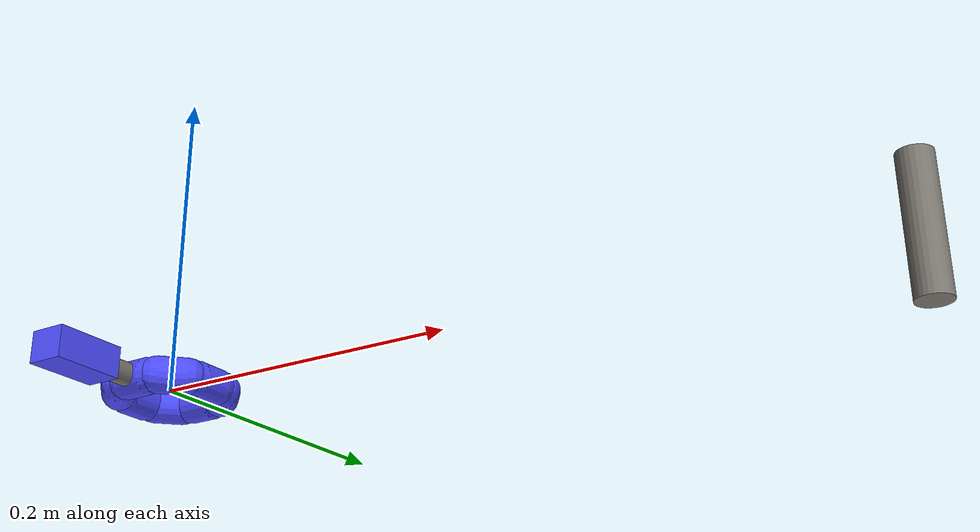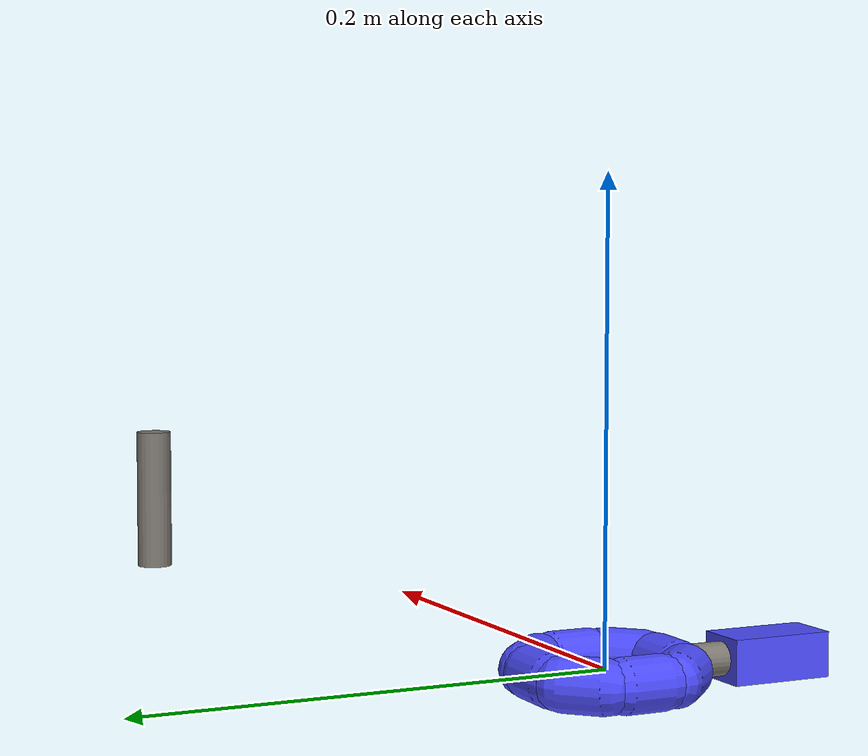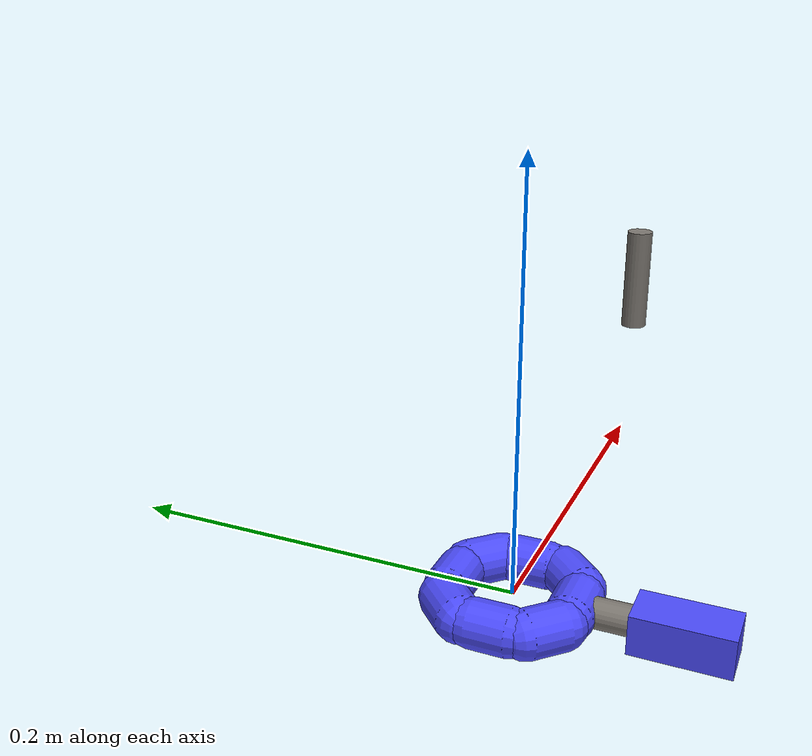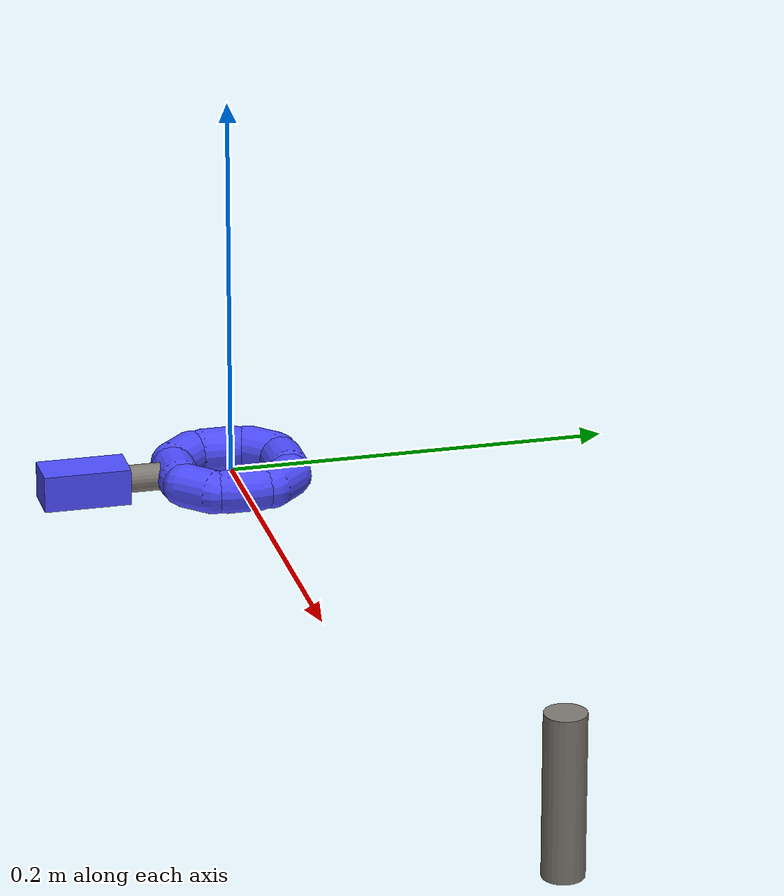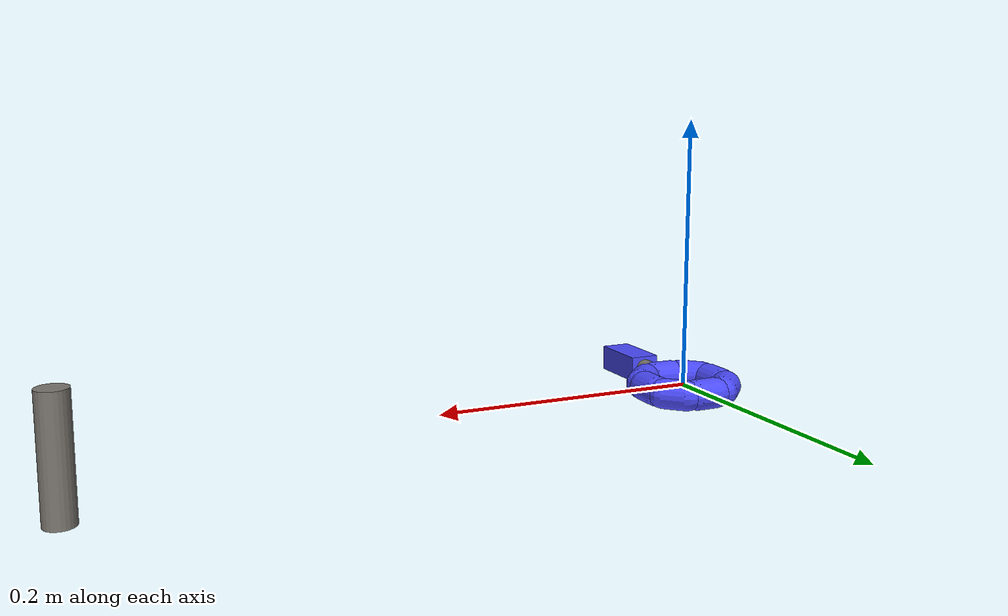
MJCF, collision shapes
<?xml version="1.0" encoding="UTF-8"?>
<mujoco model="assembly_peg">
    <compiler angle="radian" inertiafromgeom="auto" inertiagrouprange="1 5" />

    <asset>
        <texture name="T_asmbly_met" type="cube" file="textures/metal1.png" />

        <material name="asmbly_col" rgba="0.3 0.3 1.0 0.5" shininess="0" specular="0" />
        <material name="asmbly_green" rgba="0 .5 0 1" shininess="1" reflectance=".7" specular=".5" />
        <material name="asmbly_metal" rgba=".65 .65 .65 1" texture="T_asmbly_met" shininess="1" reflectance=".7" specular=".5" />
    </asset>

    <default>
        <default class="asmbly_base">
            <joint armature="0.001" damping="2" limited="true" />
            <geom conaffinity="0" contype="0" group="1" type="mesh" />
            <position ctrllimited="true" ctrlrange="0 1.57" />
            <default class="asmbly_viz">
                <geom condim="4" type="mesh" />
            </default>
            <default class="asmbly_col">
                <geom conaffinity="1" condim="3" contype="1" group="4" material="asmbly_col" solimp="0.99 0.99 0.01" solref="0.01 1" />
            </default>
            <site type="sphere" size=".01" rgba="0 1 0 1" group="5" />
        </default>
    </default>

    <asset>
        <mesh file="metaworld/assembly_peg/assembly_peg_handle.stl" name="assembly_peg_handle" scale="0.6 0.6 0.6" />
        <mesh file="metaworld/assembly_peg/assembly_peg_ring.stl" name="assembly_peg_ring" scale="0.6 0.6 0.6" />
        <mesh file="metaworld/assembly_peg/assembly_peg_rod.stl" name="assembly_peg_rod" scale="0.6 0.6 0.6" />
    </asset>

    <worldbody>
        <body name="peg_0" childclass="asmbly_base" pos="0 0 0" euler="0 0 0">
            <freejoint name="peg_joint_0" />
            <geom material="asmbly_metal" mesh="assembly_peg_ring" />
            <geom material="asmbly_green" mesh="assembly_peg_handle" pos="0 -0.078 0" name="peg_handle_0" />
            <geom material="asmbly_metal" euler="1.57 0 0" pos="0 -0.06 0" size="0.0072 0.03" type="cylinder" />
            <geom class="asmbly_col" euler="1.57 0 0" pos="0.0288 0 0" size="0.0114 0.009" type="capsule" />
            <geom class="asmbly_col" euler="0 1.57 0" pos="0 0.0288 0" size="0.0114 0.009" type="capsule" />
            <geom class="asmbly_col" euler="1.57 0.785 0.785" pos="0.0216 0.0216 0" size="0.0114 0.009" type="capsule" />
            <geom class="asmbly_col" euler="1.57 0 0" pos="-0.0288 0.0 0.0" size="0.0114 0.009" type="capsule" />
            <geom class="asmbly_col" euler="0 1.57 0" pos="0.0 -0.0288 0.0" size="0.0114 0.009" type="capsule" />
            <geom class="asmbly_col" euler="1.57 -0.785 -0.785" pos="-0.0216 0.0216 0" size="0.0114 0.009" type="capsule" />
            <geom class="asmbly_col" euler="1.57 0.785 0.785" pos="-0.0216 -0.0216 0" size="0.0114 0.009" type="capsule" />
            <geom class="asmbly_col" euler="1.57 -0.785 -0.785" pos="0.0216 -0.0216 0" size="0.0114 0.009" type="capsule" />
            <geom class="asmbly_col" pos="0 -0.078 0" size="0.0114 0.0228 0.0096" type="box" />
            <geom class="asmbly_col" euler="1.57 0 0" pos="0 -0.06 0" size="0.0072 0.03" type="cylinder" />
            <site name="peg_center_0" pos="0 0 0" size="0.005" rgba="0 1 0 1" group="5" />
            <site name="peg_handle_site_0" pos="0 -0.078 0" size="0.005" rgba="1 1 1 1" group="5" />
        </body>
        <body name="peg_target_0" pos="0.45 0.05 0.02" mocap="true">
            <geom material="asmbly_metal" type="cylinder" size="0.010 0.04" />
        </body>
    </worldbody>
</mujoco>
